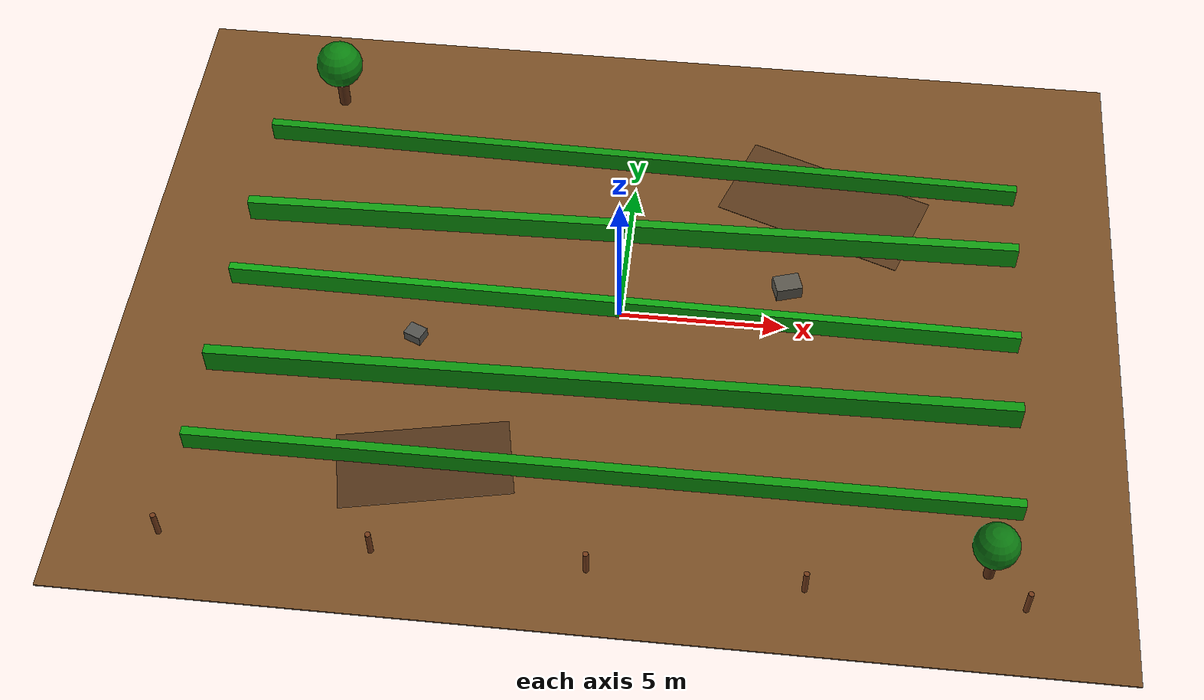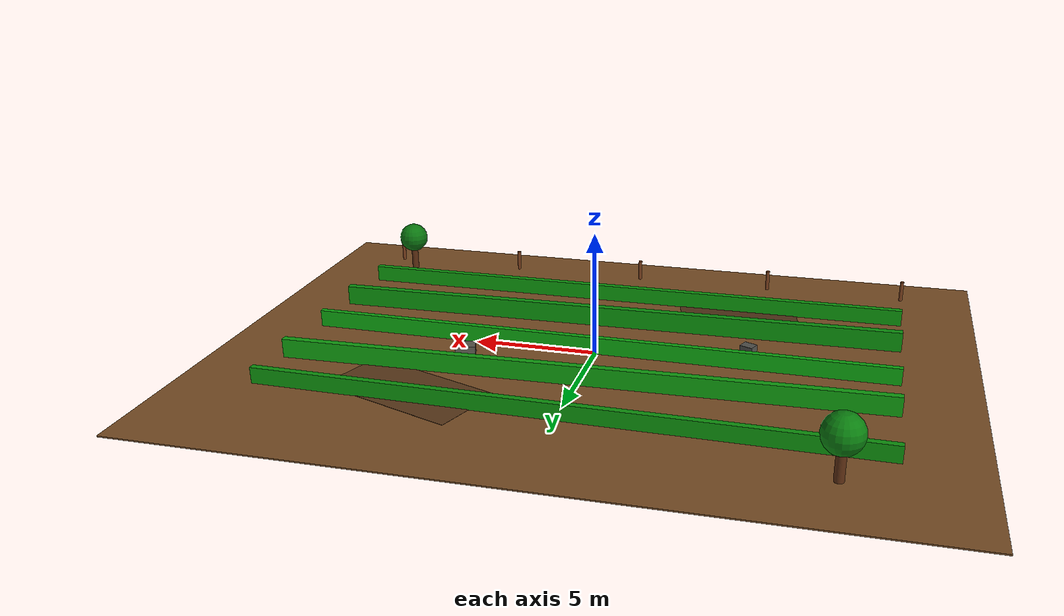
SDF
<?xml version="1.0" ?>
<sdf version="1.9">
  <world name="agri_world">

    <plugin filename="gz-sim-physics-system"
            name="gz::sim::systems::Physics"/>

    <plugin filename="gz-sim-user-commands-system"
            name="gz::sim::systems::UserCommands"/>

    <plugin filename="gz-sim-scene-broadcaster-system"
            name="gz::sim::systems::SceneBroadcaster"/>

    <!-- REQUIRED FOR LIDAR / CAMERA / OTHER SENSORS -->
    <plugin filename="gz-sim-sensors-system"
            name="gz::sim::systems::Sensors">
      <render_engine>ogre2</render_engine>
    </plugin>

    <!-- Sun light -->
    <light name="sun" type="directional">
      <pose>0 0 12 0 0 0</pose>
      <cast_shadows>true</cast_shadows>
      <intensity>1.2</intensity>
      <direction>-0.5 0.3 -1</direction>
    </light>

    <!-- Main soil ground -->
    <model name="soil_ground">
      <static>true</static>
      <link name="soil_link">
        <collision name="collision">
          <geometry>
            <box>
              <size>30 22 0.05</size>
            </box>
          </geometry>
        </collision>
        <visual name="visual">
          <geometry>
            <box>
              <size>30 22 0.05</size>
            </box>
          </geometry>
          <material>
            <ambient>0.38 0.25 0.13 1</ambient>
            <diffuse>0.48 0.31 0.15 1</diffuse>
          </material>
        </visual>
      </link>
    </model>

    <!-- Slight darker soil patches -->
    <model name="dark_soil_patch_1">
      <static>true</static>
      <pose>-5 -6 0.035 0 0 0.2</pose>
      <link name="link">
        <visual name="visual">
          <geometry>
            <box>
              <size>5 2.5 0.01</size>
            </box>
          </geometry>
          <material>
            <ambient>0.25 0.16 0.08 1</ambient>
            <diffuse>0.32 0.20 0.10 1</diffuse>
          </material>
        </visual>
      </link>
    </model>

    <model name="dark_soil_patch_2">
      <static>true</static>
      <pose>6 5 0.036 0 0 -0.35</pose>
      <link name="link">
        <visual name="visual">
          <geometry>
            <box>
              <size>6 3 0.01</size>
            </box>
          </geometry>
          <material>
            <ambient>0.28 0.18 0.09 1</ambient>
            <diffuse>0.36 0.23 0.11 1</diffuse>
          </material>
        </visual>
      </link>
    </model>

    <!-- Crop rows with wider spacing for rover -->
    <model name="crop_row_1">
      <static>true</static>
      <pose>0 -6 0.35 0 0 0</pose>
      <link name="link">
        <collision name="collision">
          <geometry><box><size>24 0.28 0.7</size></box></geometry>
        </collision>
        <visual name="visual">
          <geometry><box><size>24 0.28 0.7</size></box></geometry>
          <material>
            <ambient>0.04 0.35 0.04 1</ambient>
            <diffuse>0.05 0.60 0.05 1</diffuse>
          </material>
        </visual>
      </link>
    </model>

    <model name="crop_row_2">
      <static>true</static>
      <pose>0 -3 0.42 0 0 0.015</pose>
      <link name="link">
        <collision name="collision">
          <geometry><box><size>24 0.32 0.85</size></box></geometry>
        </collision>
        <visual name="visual">
          <geometry><box><size>24 0.32 0.85</size></box></geometry>
          <material>
            <ambient>0.03 0.33 0.04 1</ambient>
            <diffuse>0.04 0.58 0.05 1</diffuse>
          </material>
        </visual>
      </link>
    </model>

    <model name="crop_row_3">
      <static>true</static>
      <pose>0 0 0.36 0 0 -0.01</pose>
      <link name="link">
        <collision name="collision">
          <geometry><box><size>24 0.25 0.72</size></box></geometry>
        </collision>
        <visual name="visual">
          <geometry><box><size>24 0.25 0.72</size></box></geometry>
          <material>
            <ambient>0.04 0.38 0.04 1</ambient>
            <diffuse>0.05 0.65 0.06 1</diffuse>
          </material>
        </visual>
      </link>
    </model>

    <model name="crop_row_4">
      <static>true</static>
      <pose>0 3 0.40 0 0 0.02</pose>
      <link name="link">
        <collision name="collision">
          <geometry><box><size>24 0.30 0.80</size></box></geometry>
        </collision>
        <visual name="visual">
          <geometry><box><size>24 0.30 0.80</size></box></geometry>
          <material>
            <ambient>0.04 0.36 0.04 1</ambient>
            <diffuse>0.06 0.62 0.06 1</diffuse>
          </material>
        </visual>
      </link>
    </model>

    <model name="crop_row_5">
      <static>true</static>
      <pose>0 6 0.34 0 0 -0.02</pose>
      <link name="link">
        <collision name="collision">
          <geometry><box><size>24 0.27 0.68</size></box></geometry>
        </collision>
        <visual name="visual">
          <geometry><box><size>24 0.27 0.68</size></box></geometry>
          <material>
            <ambient>0.04 0.34 0.04 1</ambient>
            <diffuse>0.05 0.58 0.05 1</diffuse>
          </material>
        </visual>
      </link>
    </model>

    <!-- Small rocks / obstacles -->
    <model name="rock_obstacle_1">
      <static>true</static>
      <pose>5 1.4 0.25 0 0 0.3</pose>
      <link name="link">
        <collision name="collision">
          <geometry><box><size>0.8 0.6 0.45</size></box></geometry>
        </collision>
        <visual name="visual">
          <geometry><box><size>0.8 0.6 0.45</size></box></geometry>
          <material>
            <ambient>0.22 0.22 0.20 1</ambient>
            <diffuse>0.35 0.34 0.30 1</diffuse>
          </material>
        </visual>
      </link>
    </model>

    <model name="rock_obstacle_2">
      <static>true</static>
      <pose>-6 -1.5 0.18 0 0 -0.4</pose>
      <link name="link">
        <collision name="collision">
          <geometry><box><size>0.55 0.45 0.35</size></box></geometry>
        </collision>
        <visual name="visual">
          <geometry><box><size>0.55 0.45 0.35</size></box></geometry>
          <material>
            <ambient>0.20 0.20 0.19 1</ambient>
            <diffuse>0.32 0.32 0.30 1</diffuse>
          </material>
        </visual>
      </link>
    </model>

    <!-- Simple tree 1 -->
    <model name="tree_1">
      <static>true</static>
      <pose>-10 8 0 0 0 0</pose>
      <link name="trunk">
        <visual name="trunk_visual">
          <pose>0 0 0.75 0 0 0</pose>
          <geometry>
            <cylinder>
              <radius>0.18</radius>
              <length>1.5</length>
            </cylinder>
          </geometry>
          <material>
            <ambient>0.28 0.14 0.05 1</ambient>
            <diffuse>0.36 0.18 0.07 1</diffuse>
          </material>
        </visual>
        <visual name="leaf_visual">
          <pose>0 0 1.75 0 0 0</pose>
          <geometry>
            <sphere>
              <radius>0.75</radius>
            </sphere>
          </geometry>
          <material>
            <ambient>0.02 0.30 0.04 1</ambient>
            <diffuse>0.04 0.50 0.06 1</diffuse>
          </material>
        </visual>
      </link>
    </model>

    <!-- Simple tree 2 -->
    <model name="tree_2">
      <static>true</static>
      <pose>11 -8 0 0 0 0</pose>
      <link name="trunk">
        <visual name="trunk_visual">
          <pose>0 0 0.65 0 0 0</pose>
          <geometry>
            <cylinder>
              <radius>0.15</radius>
              <length>1.3</length>
            </cylinder>
          </geometry>
          <material>
            <ambient>0.28 0.14 0.05 1</ambient>
            <diffuse>0.36 0.18 0.07 1</diffuse>
          </material>
        </visual>
        <visual name="leaf_visual">
          <pose>0 0 1.55 0 0 0</pose>
          <geometry>
            <sphere>
              <radius>0.65</radius>
            </sphere>
          </geometry>
          <material>
            <ambient>0.02 0.28 0.04 1</ambient>
            <diffuse>0.04 0.46 0.06 1</diffuse>
          </material>
        </visual>
      </link>
    </model>

    <!-- Field boundary wooden posts -->
    <model name="wood_post_1">
      <static>true</static>
      <pose>-12 -9 0.45 0 0 0</pose>
      <link name="link">
        <visual name="visual">
          <geometry><cylinder><radius>0.08</radius><length>0.9</length></cylinder></geometry>
          <material><ambient>0.35 0.18 0.08 1</ambient><diffuse>0.45 0.23 0.10 1</diffuse></material>
        </visual>
      </link>
    </model>

    <model name="wood_post_2">
      <static>true</static>
      <pose>-6 -9 0.45 0 0 0</pose>
      <link name="link">
        <visual name="visual">
          <geometry><cylinder><radius>0.08</radius><length>0.9</length></cylinder></geometry>
          <material><ambient>0.35 0.18 0.08 1</ambient><diffuse>0.45 0.23 0.10 1</diffuse></material>
        </visual>
      </link>
    </model>

    <model name="wood_post_3">
      <static>true</static>
      <pose>0 -9 0.45 0 0 0</pose>
      <link name="link">
        <visual name="visual">
          <geometry><cylinder><radius>0.08</radius><length>0.9</length></cylinder></geometry>
          <material><ambient>0.35 0.18 0.08 1</ambient><diffuse>0.45 0.23 0.10 1</diffuse></material>
        </visual>
      </link>
    </model>

    <model name="wood_post_4">
      <static>true</static>
      <pose>6 -9 0.45 0 0 0</pose>
      <link name="link">
        <visual name="visual">
          <geometry><cylinder><radius>0.08</radius><length>0.9</length></cylinder></geometry>
          <material><ambient>0.35 0.18 0.08 1</ambient><diffuse>0.45 0.23 0.10 1</diffuse></material>
        </visual>
      </link>
    </model>

    <model name="wood_post_5">
      <static>true</static>
      <pose>12 -9 0.45 0 0 0</pose>
      <link name="link">
        <visual name="visual">
          <geometry><cylinder><radius>0.08</radius><length>0.9</length></cylinder></geometry>
          <material><ambient>0.35 0.18 0.08 1</ambient><diffuse>0.45 0.23 0.10 1</diffuse></material>
        </visual>
      </link>
    </model>

  </world>
</sdf>
